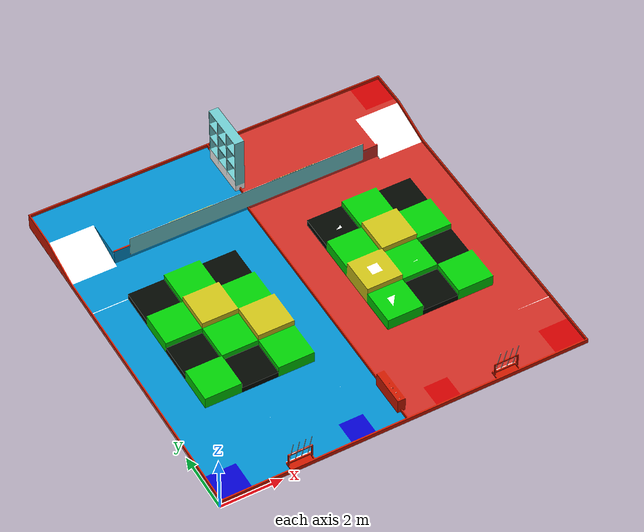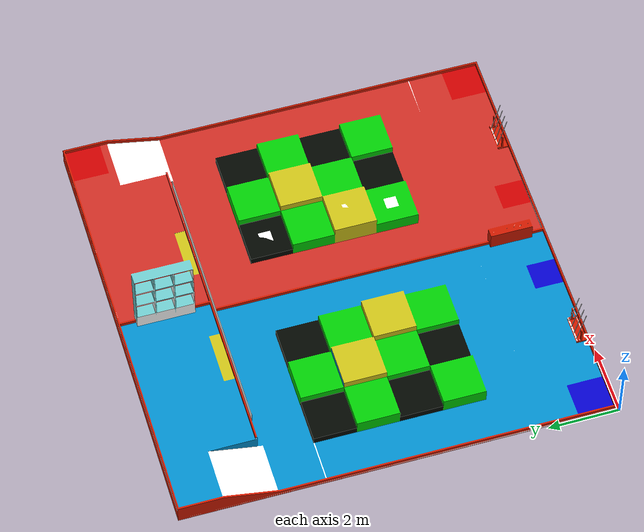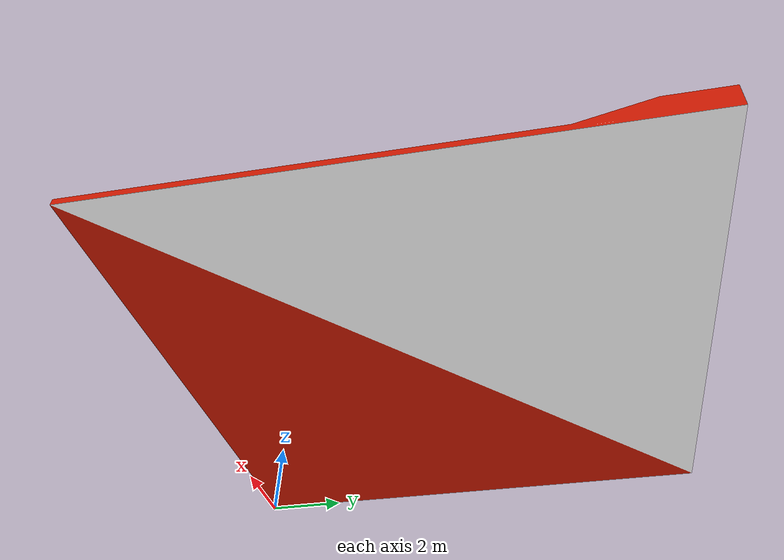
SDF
<?xml version="1.0"?>
<sdf version="1.6">

  <model name="abu2026_arena">
    <static>true</static>

    <!-- ========== NỀN SÂN ========== -->
    <link name="san_bong">
      <visual name="san_bong_visual">
        <geometry>
          <mesh>
            <uri>model://abu2026_arena/meshes/sanbong_raw.dae</uri>
            <scale>1 1 1</scale>
          </mesh>
        </geometry>
      </visual>

      <collision name="san_bong_collision">
        <geometry>
          <mesh>
            <uri>model://abu2026_arena/meshes/sanbong_raw.dae</uri>
            <scale>1 1 1</scale>
          </mesh>
        </geometry>
      </collision>
    </link>

  </model>

</sdf>
